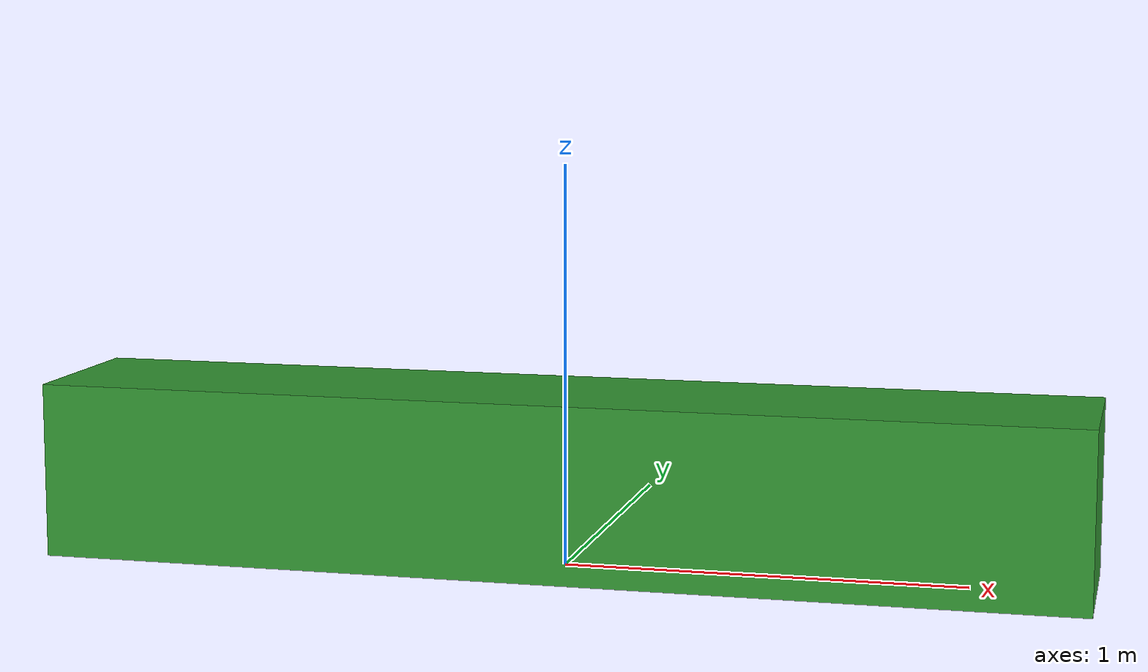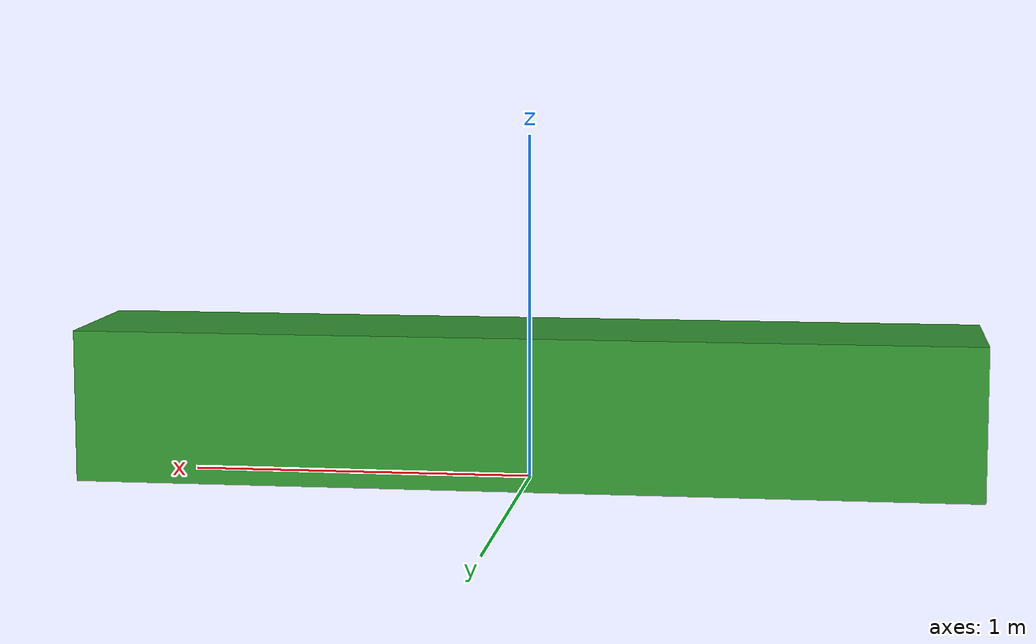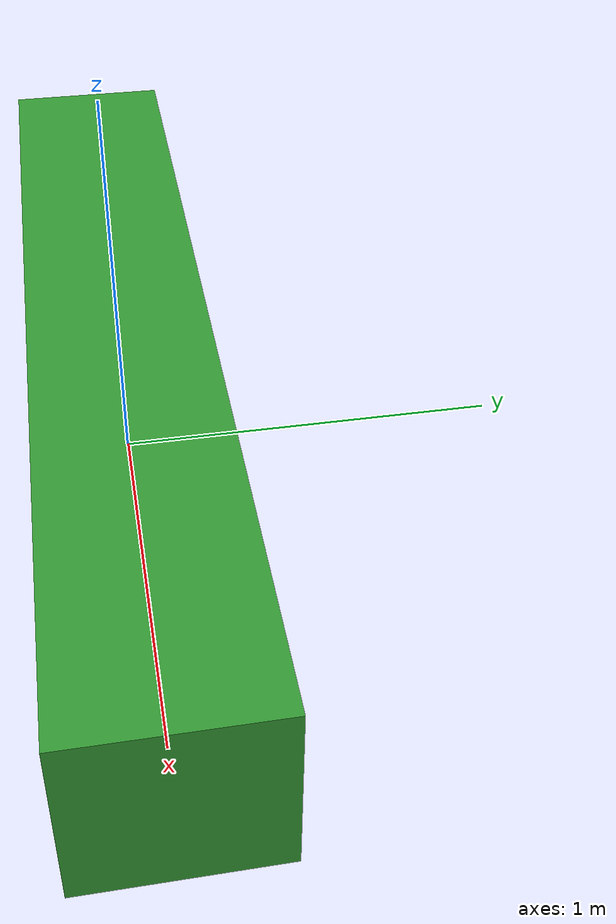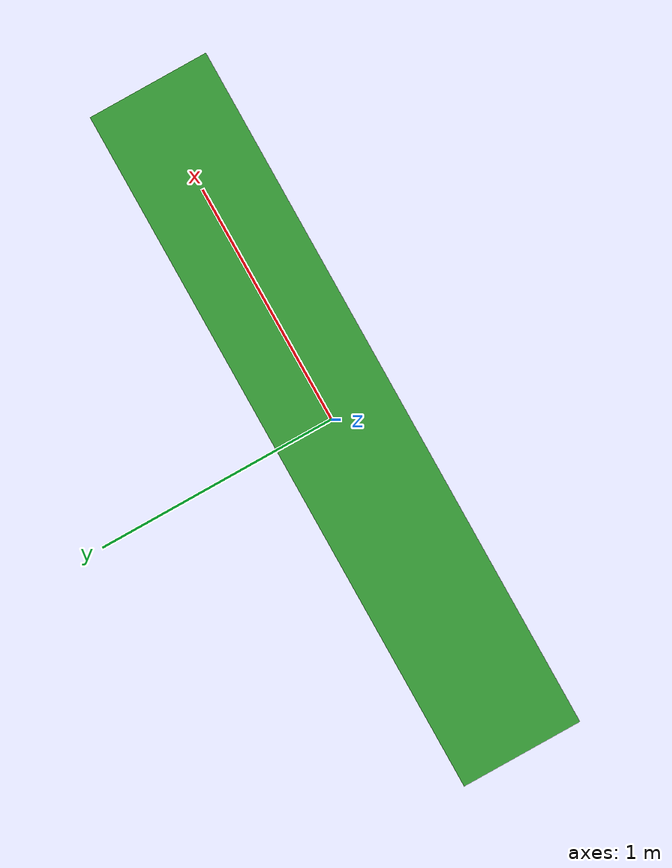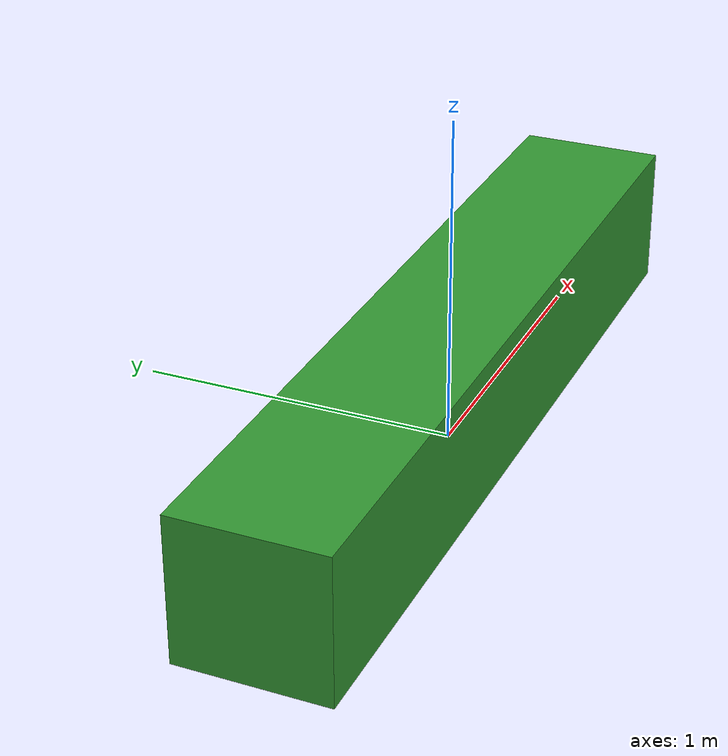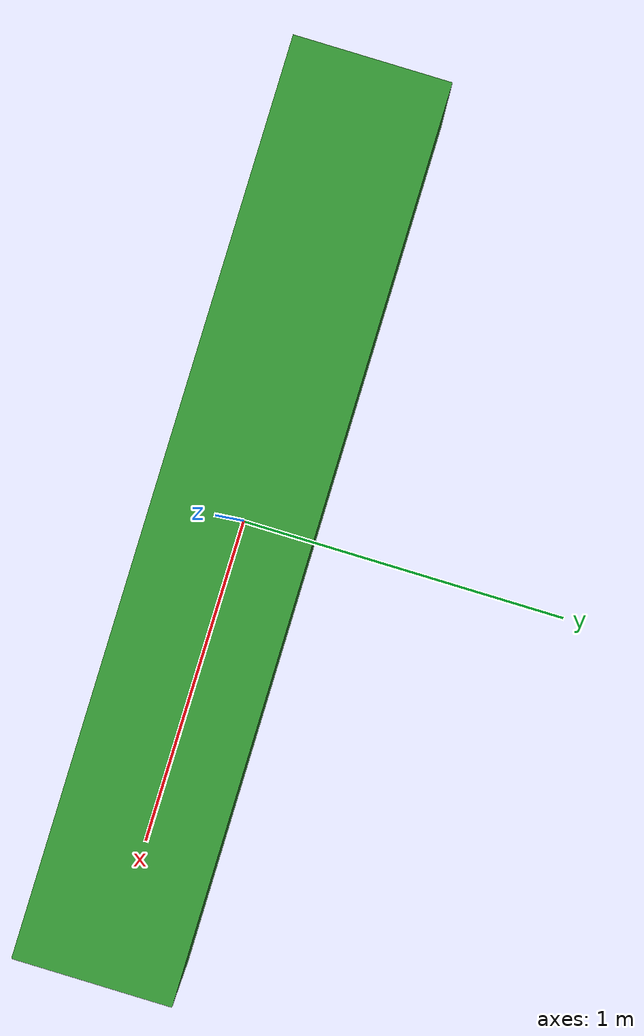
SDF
<?xml version="1.0"?>
<!-- Grown seedlings spilling over a route. Scenario D: present in the world,
     absent from the saved map, and big enough to force a real detour. -->
<sdf version="1.7">
  <model name="plant_row">
    <static>true</static>
    <link name="link">
      <visual name="foliage">
        <pose>0 0 0.22 0 0 0</pose>
        <geometry><box><size>2.60 0.45 0.44</size></box></geometry>
        <material><ambient>0.15 0.45 0.15 1</ambient><diffuse>0.2 0.6 0.2 1</diffuse></material>
      </visual>
      <collision name="collision">
        <pose>0 0 0.22 0 0 0</pose>
        <geometry><box><size>2.60 0.45 0.44</size></box></geometry>
      </collision>
    </link>
  </model>
</sdf>
